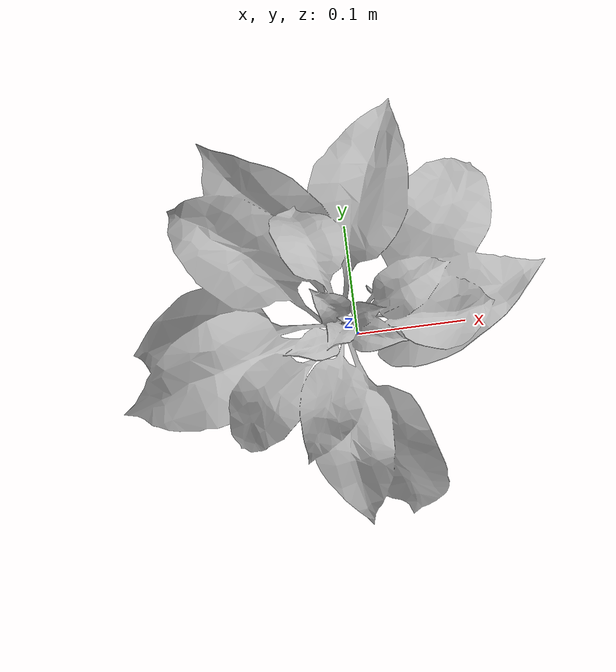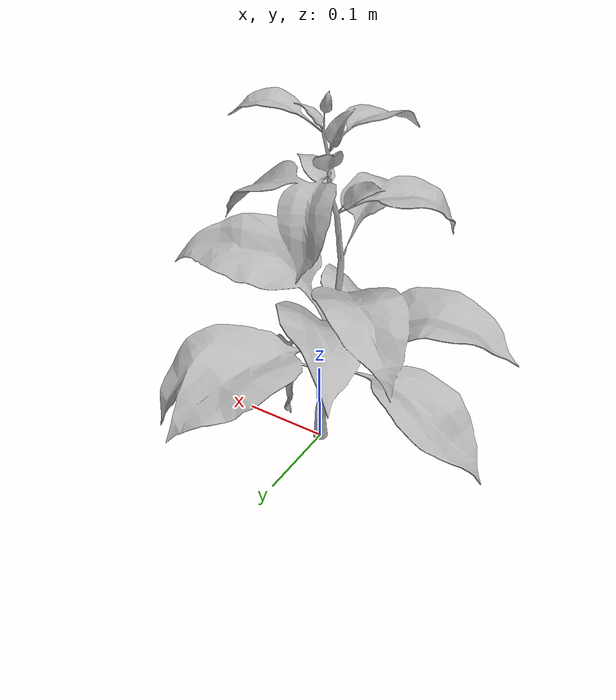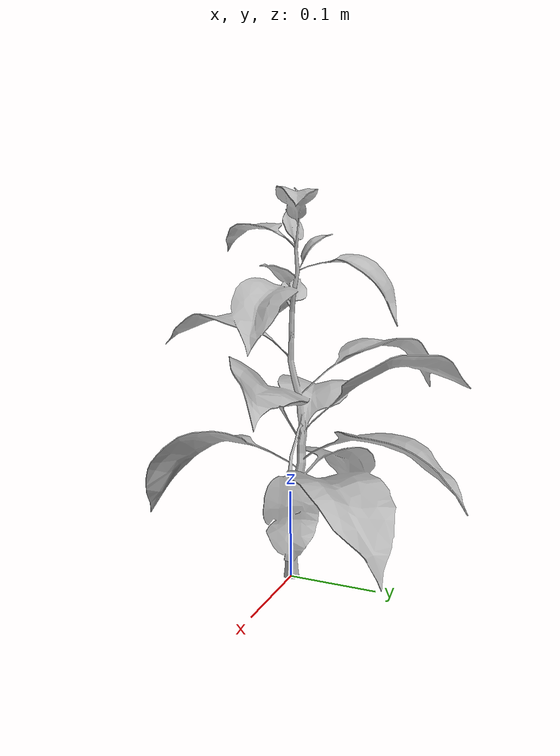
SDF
<?xml version='1.0'?>
<sdf version='1.6'>
  <model name='capsicum_plant_2'>
    <link name='link_capsicum_plant_2'>
       <visual name='visual'>
        <pose frame=''>0 0 0 0 0 0</pose>
        <geometry>
          <mesh>
            <uri>model://capsicum_plant_2/meshes/VG07_2.dae</uri>
          </mesh>
        </geometry>
      </visual>
    </link>
    <static>1</static>
  </model>
</sdf>
